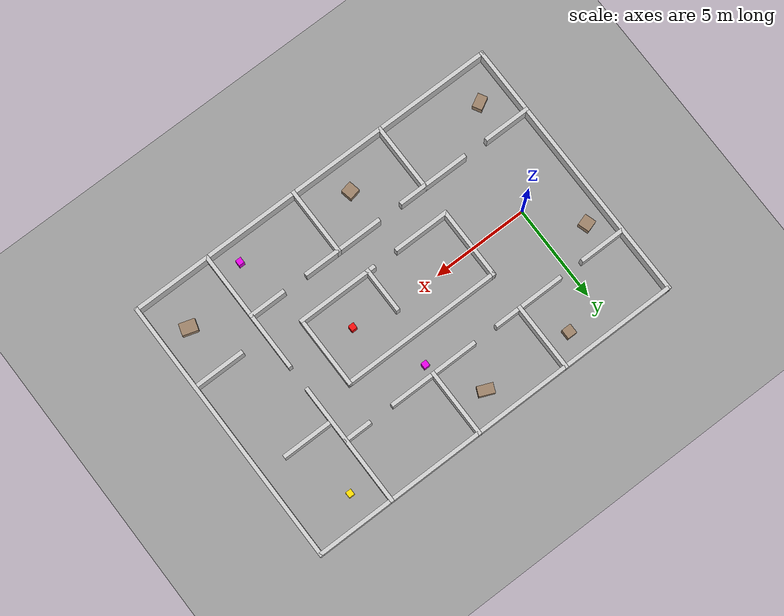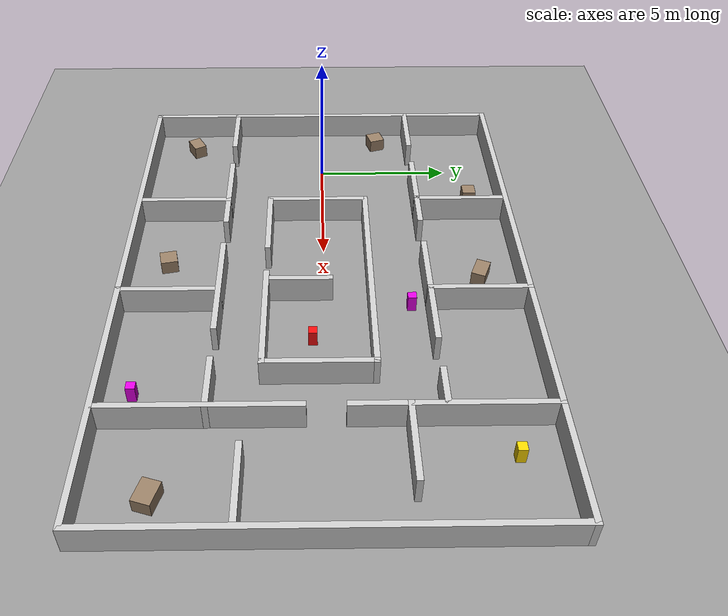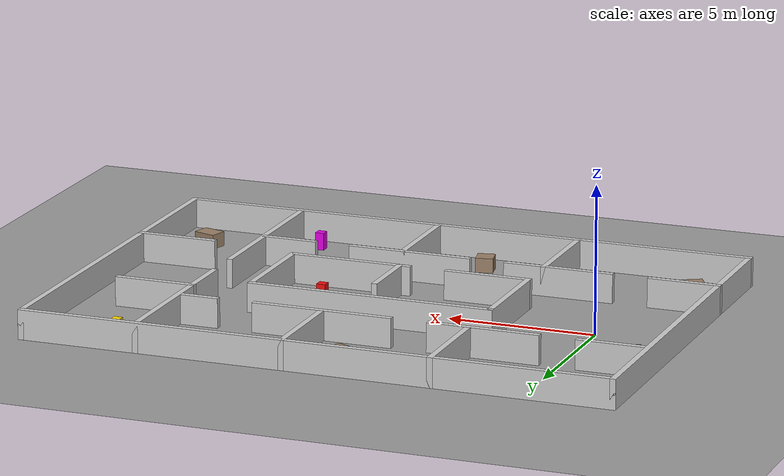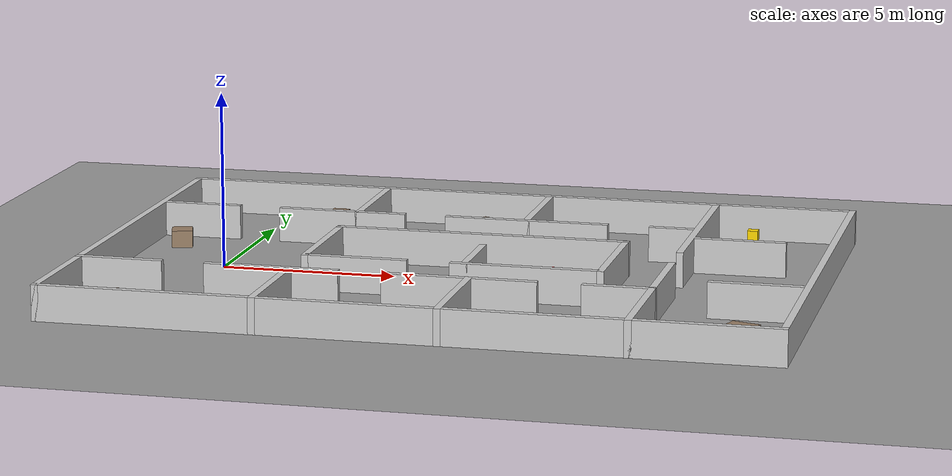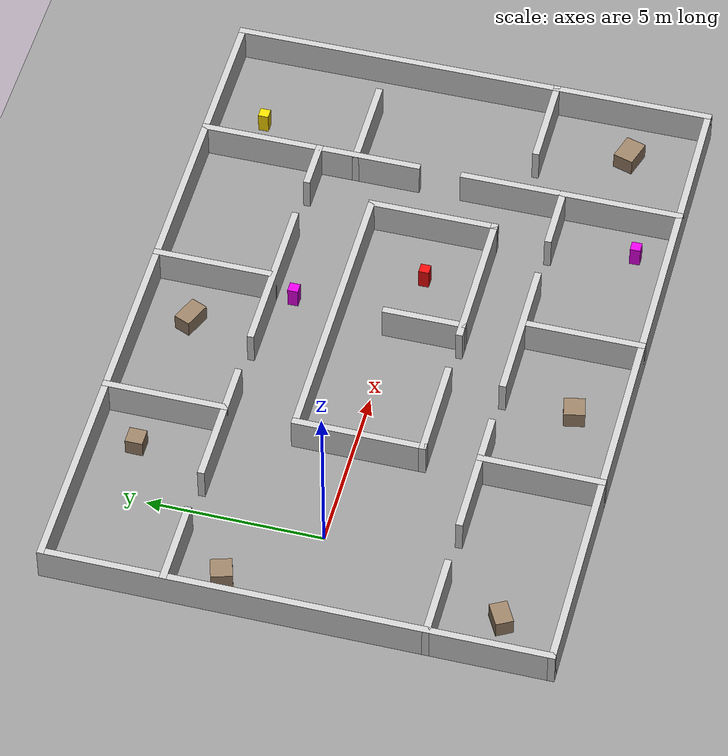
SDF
<?xml version="1.0"?>
<sdf version="1.9">
  <world name="contaminated_zone">

    <plugin filename="gz-sim-physics-system" name="gz::sim::systems::Physics"/>
    <plugin filename="gz-sim-scene-broadcaster-system" name="gz::sim::systems::SceneBroadcaster"/>
    <plugin filename="gz-sim-user-commands-system" name="gz::sim::systems::UserCommands"/>
    <plugin filename="gz-sim-sensors-system" name="gz::sim::systems::Sensors">
      <render_engine>ogre2</render_engine>
    </plugin>
    <plugin filename="gz-sim-imu-system" name="gz::sim::systems::Imu"/>

    <!-- 4 ms step: light on the CPU, smooth inside a VM -->
    <physics name="4ms" type="ignored">
      <max_step_size>0.004</max_step_size>
      <real_time_factor>1.0</real_time_factor>
    </physics>
    <gravity>0 0 -9.81</gravity>

    <light type="directional" name="sun">
      <cast_shadows>false</cast_shadows>
      <pose>0 0 10 0 0 0</pose>
      <diffuse>0.9 0.9 0.9 1</diffuse>
      <specular>0.2 0.2 0.2 1</specular>
      <direction>-0.5 0.3 -1</direction>
    </light>

    <model name="ground_plane">
      <static>true</static>
      <link name="link">
        <collision name="collision">
          <geometry><plane><normal>0 0 1</normal><size>60 60</size></plane></geometry>
          <surface><friction><ode><mu>1.0</mu><mu2>1.0</mu2></ode></friction></surface>
        </collision>
        <visual name="visual">
          <geometry><plane><normal>0 0 1</normal><size>60 60</size></plane></geometry>
          <material><ambient>0.4 0.4 0.4 1</ambient><diffuse>0.6 0.6 0.6 1</diffuse></material>
        </visual>
      </link>
    </model>

    <model name="wall_00">
      <static>true</static><pose>-3.000 0.000 0.500 0 0 1.5708</pose>
      <link name="link">
        <collision name="collision"><geometry><box><size>14.200 0.200 1.000</size></box></geometry></collision>
        <visual name="visual"><geometry><box><size>14.200 0.200 1.000</size></box></geometry>
          <material><ambient>0.7 0.7 0.7 1</ambient><diffuse>0.8 0.8 0.8 1</diffuse></material></visual>
      </link>
    </model>
    <model name="wall_01">
      <static>true</static><pose>17.000 0.000 0.500 0 0 1.5708</pose>
      <link name="link">
        <collision name="collision"><geometry><box><size>14.200 0.200 1.000</size></box></geometry></collision>
        <visual name="visual"><geometry><box><size>14.200 0.200 1.000</size></box></geometry>
          <material><ambient>0.7 0.7 0.7 1</ambient><diffuse>0.8 0.8 0.8 1</diffuse></material></visual>
      </link>
    </model>
    <model name="wall_02">
      <static>true</static><pose>7.000 7.000 0.500 0 0 0.0000</pose>
      <link name="link">
        <collision name="collision"><geometry><box><size>20.200 0.200 1.000</size></box></geometry></collision>
        <visual name="visual"><geometry><box><size>20.200 0.200 1.000</size></box></geometry>
          <material><ambient>0.7 0.7 0.7 1</ambient><diffuse>0.8 0.8 0.8 1</diffuse></material></visual>
      </link>
    </model>
    <model name="wall_03">
      <static>true</static><pose>7.000 -7.000 0.500 0 0 0.0000</pose>
      <link name="link">
        <collision name="collision"><geometry><box><size>20.200 0.200 1.000</size></box></geometry></collision>
        <visual name="visual"><geometry><box><size>20.200 0.200 1.000</size></box></geometry>
          <material><ambient>0.7 0.7 0.7 1</ambient><diffuse>0.8 0.8 0.8 1</diffuse></material></visual>
      </link>
    </model>
    <model name="wall_04">
      <static>true</static><pose>-1.850 3.600 0.500 0 0 0.0000</pose>
      <link name="link">
        <collision name="collision"><geometry><box><size>2.500 0.200 1.000</size></box></geometry></collision>
        <visual name="visual"><geometry><box><size>2.500 0.200 1.000</size></box></geometry>
          <material><ambient>0.7 0.7 0.7 1</ambient><diffuse>0.8 0.8 0.8 1</diffuse></material></visual>
      </link>
    </model>
    <model name="wall_05">
      <static>true</static><pose>2.500 3.600 0.500 0 0 0.0000</pose>
      <link name="link">
        <collision name="collision"><geometry><box><size>3.800 0.200 1.000</size></box></geometry></collision>
        <visual name="visual"><geometry><box><size>3.800 0.200 1.000</size></box></geometry>
          <material><ambient>0.7 0.7 0.7 1</ambient><diffuse>0.8 0.8 0.8 1</diffuse></material></visual>
      </link>
    </model>
    <model name="wall_06">
      <static>true</static><pose>8.000 3.600 0.500 0 0 0.0000</pose>
      <link name="link">
        <collision name="collision"><geometry><box><size>4.800 0.200 1.000</size></box></geometry></collision>
        <visual name="visual"><geometry><box><size>4.800 0.200 1.000</size></box></geometry>
          <material><ambient>0.7 0.7 0.7 1</ambient><diffuse>0.8 0.8 0.8 1</diffuse></material></visual>
      </link>
    </model>
    <model name="wall_07">
      <static>true</static><pose>12.350 3.600 0.500 0 0 0.0000</pose>
      <link name="link">
        <collision name="collision"><geometry><box><size>1.500 0.200 1.000</size></box></geometry></collision>
        <visual name="visual"><geometry><box><size>1.500 0.200 1.000</size></box></geometry>
          <material><ambient>0.7 0.7 0.7 1</ambient><diffuse>0.8 0.8 0.8 1</diffuse></material></visual>
      </link>
    </model>
    <model name="wall_08">
      <static>true</static><pose>-1.850 -3.600 0.500 0 0 0.0000</pose>
      <link name="link">
        <collision name="collision"><geometry><box><size>2.500 0.200 1.000</size></box></geometry></collision>
        <visual name="visual"><geometry><box><size>2.500 0.200 1.000</size></box></geometry>
          <material><ambient>0.7 0.7 0.7 1</ambient><diffuse>0.8 0.8 0.8 1</diffuse></material></visual>
      </link>
    </model>
    <model name="wall_09">
      <static>true</static><pose>2.500 -3.600 0.500 0 0 0.0000</pose>
      <link name="link">
        <collision name="collision"><geometry><box><size>3.800 0.200 1.000</size></box></geometry></collision>
        <visual name="visual"><geometry><box><size>3.800 0.200 1.000</size></box></geometry>
          <material><ambient>0.7 0.7 0.7 1</ambient><diffuse>0.8 0.8 0.8 1</diffuse></material></visual>
      </link>
    </model>
    <model name="wall_10">
      <static>true</static><pose>7.750 -3.600 0.500 0 0 0.0000</pose>
      <link name="link">
        <collision name="collision"><geometry><box><size>4.300 0.200 1.000</size></box></geometry></collision>
        <visual name="visual"><geometry><box><size>4.300 0.200 1.000</size></box></geometry>
          <material><ambient>0.7 0.7 0.7 1</ambient><diffuse>0.8 0.8 0.8 1</diffuse></material></visual>
      </link>
    </model>
    <model name="wall_11">
      <static>true</static><pose>12.100 -3.600 0.500 0 0 0.0000</pose>
      <link name="link">
        <collision name="collision"><geometry><box><size>2.000 0.200 1.000</size></box></geometry></collision>
        <visual name="visual"><geometry><box><size>2.000 0.200 1.000</size></box></geometry>
          <material><ambient>0.7 0.7 0.7 1</ambient><diffuse>0.8 0.8 0.8 1</diffuse></material></visual>
      </link>
    </model>
    <model name="wall_12">
      <static>true</static><pose>3.000 5.300 0.500 0 0 1.5708</pose>
      <link name="link">
        <collision name="collision"><geometry><box><size>3.600 0.200 1.000</size></box></geometry></collision>
        <visual name="visual"><geometry><box><size>3.600 0.200 1.000</size></box></geometry>
          <material><ambient>0.7 0.7 0.7 1</ambient><diffuse>0.8 0.8 0.8 1</diffuse></material></visual>
      </link>
    </model>
    <model name="wall_13">
      <static>true</static><pose>8.000 5.300 0.500 0 0 1.5708</pose>
      <link name="link">
        <collision name="collision"><geometry><box><size>3.600 0.200 1.000</size></box></geometry></collision>
        <visual name="visual"><geometry><box><size>3.600 0.200 1.000</size></box></geometry>
          <material><ambient>0.7 0.7 0.7 1</ambient><diffuse>0.8 0.8 0.8 1</diffuse></material></visual>
      </link>
    </model>
    <model name="wall_14">
      <static>true</static><pose>3.000 -5.300 0.500 0 0 1.5708</pose>
      <link name="link">
        <collision name="collision"><geometry><box><size>3.600 0.200 1.000</size></box></geometry></collision>
        <visual name="visual"><geometry><box><size>3.600 0.200 1.000</size></box></geometry>
          <material><ambient>0.7 0.7 0.7 1</ambient><diffuse>0.8 0.8 0.8 1</diffuse></material></visual>
      </link>
    </model>
    <model name="wall_15">
      <static>true</static><pose>8.000 -5.300 0.500 0 0 1.5708</pose>
      <link name="link">
        <collision name="collision"><geometry><box><size>3.600 0.200 1.000</size></box></geometry></collision>
        <visual name="visual"><geometry><box><size>3.600 0.200 1.000</size></box></geometry>
          <material><ambient>0.7 0.7 0.7 1</ambient><diffuse>0.8 0.8 0.8 1</diffuse></material></visual>
      </link>
    </model>
    <model name="wall_16">
      <static>true</static><pose>13.000 -3.850 0.500 0 0 1.5708</pose>
      <link name="link">
        <collision name="collision"><geometry><box><size>6.500 0.200 1.000</size></box></geometry></collision>
        <visual name="visual"><geometry><box><size>6.500 0.200 1.000</size></box></geometry>
          <material><ambient>0.7 0.7 0.7 1</ambient><diffuse>0.8 0.8 0.8 1</diffuse></material></visual>
      </link>
    </model>
    <model name="wall_17">
      <static>true</static><pose>13.000 3.850 0.500 0 0 1.5708</pose>
      <link name="link">
        <collision name="collision"><geometry><box><size>6.500 0.200 1.000</size></box></geometry></collision>
        <visual name="visual"><geometry><box><size>6.500 0.200 1.000</size></box></geometry>
          <material><ambient>0.7 0.7 0.7 1</ambient><diffuse>0.8 0.8 0.8 1</diffuse></material></visual>
      </link>
    </model>
    <model name="wall_18">
      <static>true</static><pose>3.000 -0.200 0.500 0 0 1.5708</pose>
      <link name="link">
        <collision name="collision"><geometry><box><size>3.800 0.200 1.000</size></box></geometry></collision>
        <visual name="visual"><geometry><box><size>3.800 0.200 1.000</size></box></geometry>
          <material><ambient>0.7 0.7 0.7 1</ambient><diffuse>0.8 0.8 0.8 1</diffuse></material></visual>
      </link>
    </model>
    <model name="wall_19">
      <static>true</static><pose>7.150 1.600 0.500 0 0 0.0000</pose>
      <link name="link">
        <collision name="collision"><geometry><box><size>8.500 0.200 1.000</size></box></geometry></collision>
        <visual name="visual"><geometry><box><size>8.500 0.200 1.000</size></box></geometry>
          <material><ambient>0.7 0.7 0.7 1</ambient><diffuse>0.8 0.8 0.8 1</diffuse></material></visual>
      </link>
    </model>
    <model name="wall_20">
      <static>true</static><pose>11.300 -0.200 0.500 0 0 1.5708</pose>
      <link name="link">
        <collision name="collision"><geometry><box><size>3.800 0.200 1.000</size></box></geometry></collision>
        <visual name="visual"><geometry><box><size>3.800 0.200 1.000</size></box></geometry>
          <material><ambient>0.7 0.7 0.7 1</ambient><diffuse>0.8 0.8 0.8 1</diffuse></material></visual>
      </link>
    </model>
    <model name="wall_21">
      <static>true</static><pose>4.400 -2.000 0.500 0 0 0.0000</pose>
      <link name="link">
        <collision name="collision"><geometry><box><size>3.000 0.200 1.000</size></box></geometry></collision>
        <visual name="visual"><geometry><box><size>3.000 0.200 1.000</size></box></geometry>
          <material><ambient>0.7 0.7 0.7 1</ambient><diffuse>0.8 0.8 0.8 1</diffuse></material></visual>
      </link>
    </model>
    <model name="wall_22">
      <static>true</static><pose>9.250 -2.000 0.500 0 0 0.0000</pose>
      <link name="link">
        <collision name="collision"><geometry><box><size>4.300 0.200 1.000</size></box></geometry></collision>
        <visual name="visual"><geometry><box><size>4.300 0.200 1.000</size></box></geometry>
          <material><ambient>0.7 0.7 0.7 1</ambient><diffuse>0.8 0.8 0.8 1</diffuse></material></visual>
      </link>
    </model>
    <model name="wall_23">
      <static>true</static><pose>7.500 -0.900 0.500 0 0 1.5708</pose>
      <link name="link">
        <collision name="collision"><geometry><box><size>2.400 0.200 1.000</size></box></geometry></collision>
        <visual name="visual"><geometry><box><size>2.400 0.200 1.000</size></box></geometry>
          <material><ambient>0.7 0.7 0.7 1</ambient><diffuse>0.8 0.8 0.8 1</diffuse></material></visual>
      </link>
    </model>
    <model name="wall_24">
      <static>true</static><pose>14.300 2.500 0.500 0 0 0.0000</pose>
      <link name="link">
        <collision name="collision"><geometry><box><size>2.800 0.200 1.000</size></box></geometry></collision>
        <visual name="visual"><geometry><box><size>2.800 0.200 1.000</size></box></geometry>
          <material><ambient>0.7 0.7 0.7 1</ambient><diffuse>0.8 0.8 0.8 1</diffuse></material></visual>
      </link>
    </model>
    <model name="wall_25">
      <static>true</static><pose>15.700 -2.500 0.500 0 0 0.0000</pose>
      <link name="link">
        <collision name="collision"><geometry><box><size>2.800 0.200 1.000</size></box></geometry></collision>
        <visual name="visual"><geometry><box><size>2.800 0.200 1.000</size></box></geometry>
          <material><ambient>0.7 0.7 0.7 1</ambient><diffuse>0.8 0.8 0.8 1</diffuse></material></visual>
      </link>
    </model>
    <model name="rubble_hall">
      <static>true</static><pose>-2.000 2.300 0.250 0 0 0.3000</pose>
      <link name="link">
        <collision name="collision"><geometry><box><size>0.600 0.600 0.500</size></box></geometry></collision>
        <visual name="visual"><geometry><box><size>0.600 0.600 0.500</size></box></geometry>
          <material><ambient>0.5 0.4 0.3 1</ambient><diffuse>0.6 0.5 0.4 1</diffuse></material></visual>
      </link>
    </model>
    <model name="rubble_n1">
      <static>true</static><pose>6.500 5.600 0.250 0 0 -0.4000</pose>
      <link name="link">
        <collision name="collision"><geometry><box><size>0.800 0.500 0.500</size></box></geometry></collision>
        <visual name="visual"><geometry><box><size>0.800 0.500 0.500</size></box></geometry>
          <material><ambient>0.5 0.4 0.3 1</ambient><diffuse>0.6 0.5 0.4 1</diffuse></material></visual>
      </link>
    </model>
    <model name="rubble_sw">
      <static>true</static><pose>-1.600 -5.300 0.250 0 0 0.5000</pose>
      <link name="link">
        <collision name="collision"><geometry><box><size>0.700 0.500 0.500</size></box></geometry></collision>
        <visual name="visual"><geometry><box><size>0.700 0.500 0.500</size></box></geometry>
          <material><ambient>0.5 0.4 0.3 1</ambient><diffuse>0.6 0.5 0.4 1</diffuse></material></visual>
      </link>
    </model>
    <model name="rubble_s1">
      <static>true</static><pose>5.800 -5.600 0.250 0 0 0.2000</pose>
      <link name="link">
        <collision name="collision"><geometry><box><size>0.600 0.600 0.500</size></box></geometry></collision>
        <visual name="visual"><geometry><box><size>0.600 0.600 0.500</size></box></geometry>
          <material><ambient>0.5 0.4 0.3 1</ambient><diffuse>0.6 0.5 0.4 1</diffuse></material></visual>
      </link>
    </model>
    <model name="rubble_se">
      <static>true</static><pose>15.600 -5.000 0.250 0 0 -0.3000</pose>
      <link name="link">
        <collision name="collision"><geometry><box><size>0.800 0.600 0.500</size></box></geometry></collision>
        <visual name="visual"><geometry><box><size>0.800 0.600 0.500</size></box></geometry>
          <material><ambient>0.5 0.4 0.3 1</ambient><diffuse>0.6 0.5 0.4 1</diffuse></material></visual>
      </link>
    </model>
    <model name="rubble_nw">
      <static>true</static><pose>1.800 5.800 0.250 0 0 0.0000</pose>
      <link name="link">
        <collision name="collision"><geometry><box><size>0.500 0.500 0.500</size></box></geometry></collision>
        <visual name="visual"><geometry><box><size>0.500 0.500 0.500</size></box></geometry>
          <material><ambient>0.5 0.4 0.3 1</ambient><diffuse>0.6 0.5 0.4 1</diffuse></material></visual>
      </link>
    </model>
    <model name="radiation_source">
      <static>true</static><pose>8.000 3.000 0.300 0 0 0.0000</pose>
      <link name="link">
        <collision name="collision"><geometry><box><size>0.300 0.300 0.600</size></box></geometry></collision>
        <visual name="visual"><geometry><box><size>0.300 0.300 0.600</size></box></geometry>
          <material><ambient>0.6 0.0 0.6 1</ambient><diffuse>0.9 0.0 0.9 1</diffuse><emissive>0.3 0.0 0.3 1</emissive></material></visual>
      </link>
    </model>
    <model name="radiation_source_2">
      <static>true</static><pose>11.900 -6.000 0.300 0 0 0.0000</pose>
      <link name="link">
        <collision name="collision"><geometry><box><size>0.300 0.300 0.600</size></box></geometry></collision>
        <visual name="visual"><geometry><box><size>0.300 0.300 0.600</size></box></geometry>
          <material><ambient>0.6 0.0 0.6 1</ambient><diffuse>0.9 0.0 0.9 1</diffuse><emissive>0.3 0.0 0.3 1</emissive></material></visual>
      </link>
    </model>
    <model name="fire_hazard">
      <static>true</static><pose>9.600 -0.400 0.300 0 0 0.0000</pose>
      <link name="link">
        <collision name="collision"><geometry><box><size>0.300 0.300 0.600</size></box></geometry></collision>
        <visual name="visual"><geometry><box><size>0.300 0.300 0.600</size></box></geometry>
          <material><ambient>0.6 0.0 0.0 1</ambient><diffuse>0.95 0.05 0.05 1</diffuse><emissive>0.4 0.0 0.0 1</emissive></material></visual>
      </link>
    </model>
    <model name="gas_leak">
      <static>true</static><pose>14.300 5.600 0.300 0 0 0.0000</pose>
      <link name="link">
        <collision name="collision"><geometry><box><size>0.300 0.300 0.600</size></box></geometry></collision>
        <visual name="visual"><geometry><box><size>0.300 0.300 0.600</size></box></geometry>
          <material><ambient>0.7 0.6 0.0 1</ambient><diffuse>1.0 0.85 0.0 1</diffuse><emissive>0.45 0.38 0.0 1</emissive></material></visual>
      </link>
    </model>

  </world>
</sdf>
